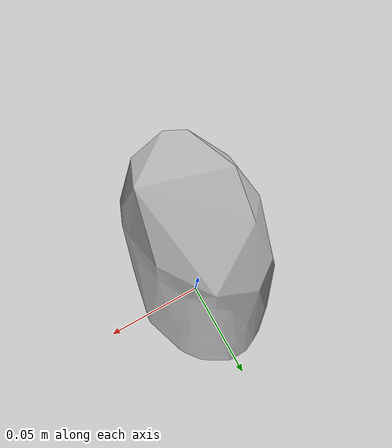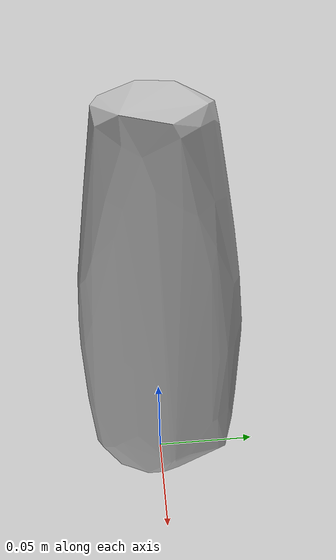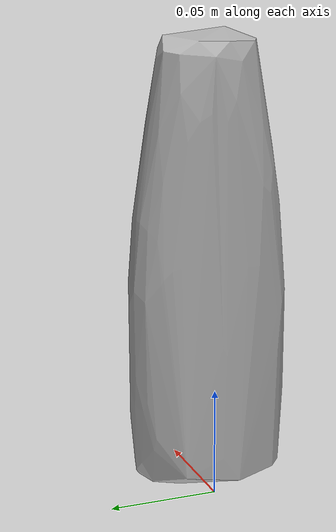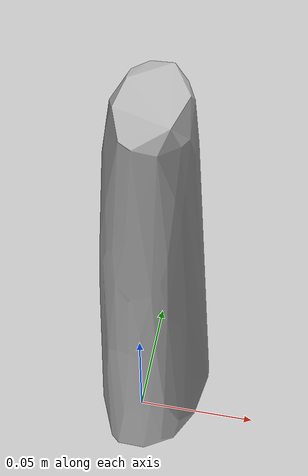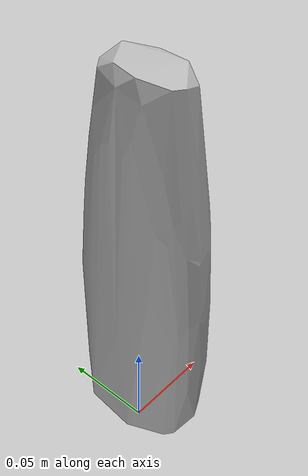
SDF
<?xml version='1.0'?>
<sdf version="1.4">
  <model name="vo5_extra_body_volumizing_shampoo">
    <static>false</static>
    <link name="link">
      <inertial>
        <pose>0.005179706002202745 0.0013918257430987875 0.09957125314714728 3.140866114716509 0.013845699129866641 -0.021885322421853596</pose>
        <mass>0.03358179070832016</mass>
        <inertia>
          <ixx>0.00014549432331922648</ixx>
          <ixy>8.749856025300839e-21</ixy>
          <ixz>-1.1436944243915769e-21</ixz>
          <iyy>0.0001381295334792137</iyy>
          <iyz>1.3722846040584814e-20</iyz>
          <izz>1.7233222557536195e-05</izz>
        </inertia>
      </inertial>
      <collision name="collision">
        <geometry>
          <mesh>
            <!-- Use a downsampled mesh for collisions -->
            <uri>model:///vo5_extra_body_volumizing_shampoo/vo5_extra_body_volumizing_shampoo_250_collision.obj</uri>
	        </mesh>
        </geometry>
        <surface>
      </surface>
      </collision>
      <visual name="visual">
        <geometry>
          <mesh>
            <uri>model:///vo5_extra_body_volumizing_shampoo/optimized_tsdf_texture_mapped_mesh.obj</uri>
	        </mesh>
        </geometry>
        <material>
          <script>
            <uri>model:///vo5_extra_body_volumizing_shampoo/vo5_extra_body_volumizing_shampoo.material</uri>
            <name>vo5_extra_body_volumizing_shampoo</name>
          </script>
        </material>
      </visual>
    </link>
  </model>
</sdf>
